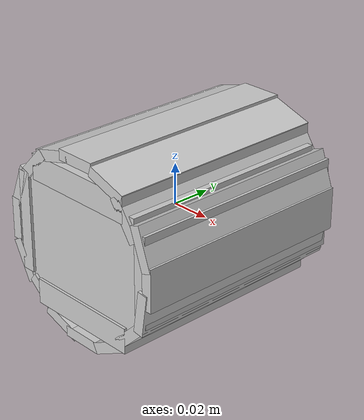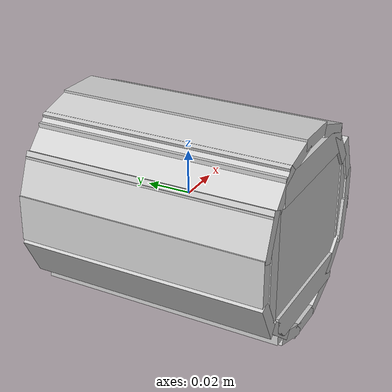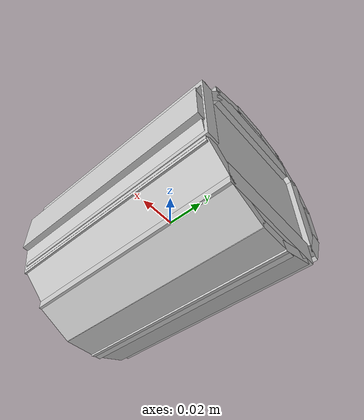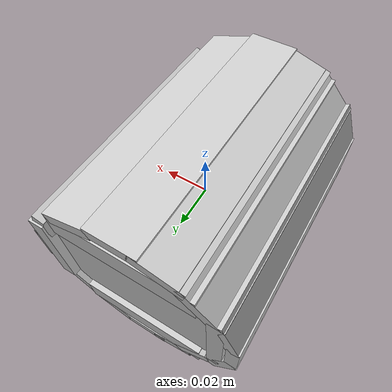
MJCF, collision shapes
<?xml version='1.0' encoding='utf-8'?>
<mujoco model="bigger_alphabet_soup">
  <asset>
  <texture file="texture_map.png" name="tex-textured" type="2d" />
  <material name="bigger_alphabet_soup" reflectance="0.5" texrepeat="1 1" texture="tex-textured" texuniform="false" />
  <mesh file="visual/textured_vis.msh" name="textured_vis" scale="0.01500 0.01500 0.01500" /></asset>
  <worldbody>
    <body>
      <body name="object">
      <geom solimp="0.998 0.998 0.001" solref="0.001 1" density="100" friction="0.95 0.3 0.1" type="mesh" mesh="textured_vis" conaffinity="0" contype="0" group="1" material="bigger_alphabet_soup" /><geom solimp="0.998 0.998 0.001" solref="0.001 1" density="100" friction="0.95 0.3 0.1" type="box" pos="0.00000 -0.00156 -0.00353" quat="0.50000 -0.50000 0.50000 0.50000" size="0.02811 0.03528 0.05437" group="0" rgba="0.8 0.8 0.8 0.3" /><geom solimp="0.998 0.998 0.001" solref="0.001 1" density="100" friction="0.95 0.3 0.1" type="box" pos="0.03898 -0.00000 -0.00313" quat="0.70711 0.70711 0.00000 -0.00000" size="0.00339 0.02207 0.05640" group="0" rgba="0.8 0.8 0.8 0.3" /><geom solimp="0.998 0.998 0.001" solref="0.001 1" density="100" friction="0.95 0.3 0.1" type="box" pos="-0.03705 -0.00090 -0.00313" quat="0.70711 0.70711 0.00000 -0.00000" size="0.00339 0.02493 0.05640" group="0" rgba="0.8 0.8 0.8 0.3" /><geom solimp="0.998 0.998 0.001" solref="0.001 1" density="100" friction="0.95 0.3 0.1" type="box" pos="-0.00018 -0.00090 -0.03619" quat="0.50000 -0.50000 0.50000 0.50000" size="0.00632 0.02977 0.05640" group="0" rgba="0.8 0.8 0.8 0.3" /><geom solimp="0.998 0.998 0.001" solref="0.001 1" density="100" friction="0.95 0.3 0.1" type="box" pos="-0.00018 -0.00090 0.02664" quat="0.50000 -0.50000 0.50000 0.50000" size="0.00632 0.02977 0.05640" group="0" rgba="0.8 0.8 0.8 0.3" /><geom solimp="0.998 0.998 0.001" solref="0.001 1" density="100" friction="0.95 0.3 0.1" type="box" pos="-0.00018 -0.00090 -0.04890" quat="0.50000 0.50000 0.50000 -0.50000" size="0.00266 0.01041 0.05640" group="0" rgba="0.8 0.8 0.8 0.3" /><geom solimp="0.998 0.998 0.001" solref="0.001 1" density="100" friction="0.95 0.3 0.1" type="box" pos="-0.00018 -0.00090 0.03862" quat="0.50000 0.50000 0.50000 -0.50000" size="0.00266 0.01041 0.05640" group="0" rgba="0.8 0.8 0.8 0.3" /><geom solimp="0.998 0.998 0.001" solref="0.001 1" density="100" friction="0.95 0.3 0.1" type="box" pos="-0.04416 -0.00090 -0.00436" quat="0.00030 0.00030 -0.70711 0.70711" size="0.00266 0.01041 0.05640" group="0" rgba="0.8 0.8 0.8 0.3" /><geom solimp="0.998 0.998 0.001" solref="0.001 1" density="100" friction="0.95 0.3 0.1" type="box" pos="0.04396 -0.00090 -0.00436" quat="0.70711 0.70711 0.00030 -0.00030" size="0.00266 0.01041 0.05640" group="0" rgba="0.8 0.8 0.8 0.3" /><geom solimp="0.998 0.998 0.001" solref="0.001 1" density="100" friction="0.95 0.3 0.1" type="box" pos="0.04034 -0.00090 0.01279" quat="0.69661 0.69661 -0.12141 0.12141" size="0.00266 0.01041 0.05640" group="0" rgba="0.8 0.8 0.8 0.3" /><geom solimp="0.998 0.998 0.001" solref="0.001 1" density="100" friction="0.95 0.3 0.1" type="box" pos="-0.03981 -0.00090 -0.02429" quat="0.16993 -0.16993 0.68638 0.68638" size="0.00266 0.01041 0.05640" group="0" rgba="0.8 0.8 0.8 0.3" /><geom solimp="0.998 0.998 0.001" solref="0.001 1" density="100" friction="0.95 0.3 0.1" type="box" pos="-0.02644 -0.00090 -0.03742" quat="0.30330 -0.30330 0.63875 0.63875" size="0.00266 0.01041 0.05640" group="0" rgba="0.8 0.8 0.8 0.3" /><geom solimp="0.998 0.998 0.001" solref="0.001 1" density="100" friction="0.95 0.3 0.1" type="box" pos="-0.01446 -0.00090 -0.04648" quat="0.41278 -0.41278 0.57412 0.57412" size="0.00266 0.01041 0.05640" group="0" rgba="0.8 0.8 0.8 0.3" /><geom solimp="0.998 0.998 0.001" solref="0.001 1" density="100" friction="0.95 0.3 0.1" type="box" pos="0.01905 -0.00090 0.03411" quat="0.41278 -0.41278 0.57412 0.57412" size="0.00266 0.01041 0.05640" group="0" rgba="0.8 0.8 0.8 0.3" /><geom solimp="0.998 0.998 0.001" solref="0.001 1" density="100" friction="0.95 0.3 0.1" type="box" pos="0.01860 -0.00090 -0.04442" quat="0.36902 0.36902 -0.60318 0.60318" size="0.00266 0.01041 0.05640" group="0" rgba="0.8 0.8 0.8 0.3" /><geom solimp="0.998 0.998 0.001" solref="0.001 1" density="100" friction="0.95 0.3 0.1" type="box" pos="0.03250 -0.00090 -0.03216" quat="0.65137 0.65137 0.27516 -0.27516" size="0.00266 0.01041 0.05640" group="0" rgba="0.8 0.8 0.8 0.3" /><geom solimp="0.998 0.998 0.001" solref="0.001 1" density="100" friction="0.95 0.3 0.1" type="box" pos="0.04044 -0.00148 -0.01754" quat="0.05205 0.05205 -0.70519 0.70519" size="0.00266 0.01041 0.05640" group="0" rgba="0.8 0.8 0.8 0.3" /><geom solimp="0.998 0.998 0.001" solref="0.001 1" density="100" friction="0.95 0.3 0.1" type="box" pos="-0.04050 -0.00090 0.01329" quat="0.13049 0.13049 -0.69496 0.69496" size="0.00266 0.01041 0.05640" group="0" rgba="0.8 0.8 0.8 0.3" /><geom solimp="0.998 0.998 0.001" solref="0.001 1" density="100" friction="0.95 0.3 0.1" type="box" pos="-0.03007 -0.00090 0.02712" quat="0.65572 0.65572 0.26463 -0.26463" size="0.00266 0.01041 0.05640" group="0" rgba="0.8 0.8 0.8 0.3" /><geom solimp="0.998 0.998 0.001" solref="0.001 1" density="100" friction="0.95 0.3 0.1" type="box" pos="0.03039 -0.00090 0.02241" quat="0.20946 -0.20946 0.67537 0.67537" size="0.00266 0.01041 0.05640" group="0" rgba="0.8 0.8 0.8 0.3" /><geom solimp="0.998 0.998 0.001" solref="0.001 1" density="100" friction="0.95 0.3 0.1" type="box" pos="-0.01626 -0.00090 0.03596" quat="0.56204 -0.56204 0.42908 0.42908" size="0.00266 0.01041 0.05640" group="0" rgba="0.8 0.8 0.8 0.3" /></body>
      <site rgba="0 0 0 0" size="0.00750" pos="0.00000 0.00000 -0.06000" name="bottom_site" />
      <site rgba="0 0 0 0" size="0.00750" pos="0.00000 0.00000 0.06000" name="top_site" />
      <site rgba="0 0 0 0" size="0.00750" pos="0.03750 0.03750 0.00000" name="horizontal_radius_site" />
    </body>
  </worldbody>
</mujoco>
